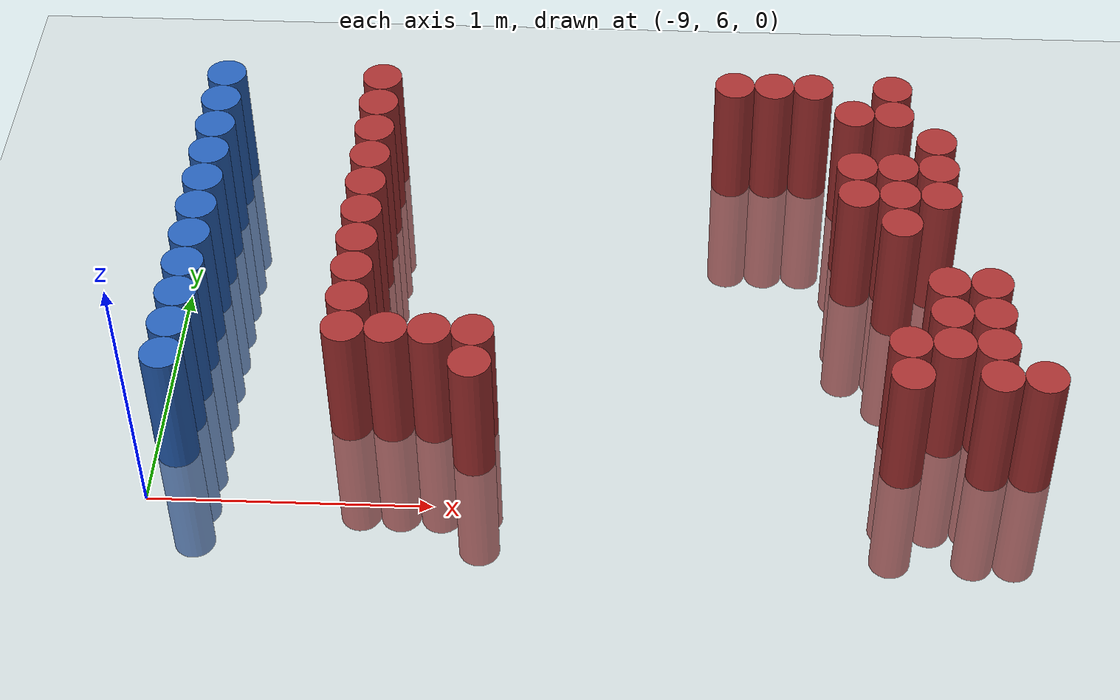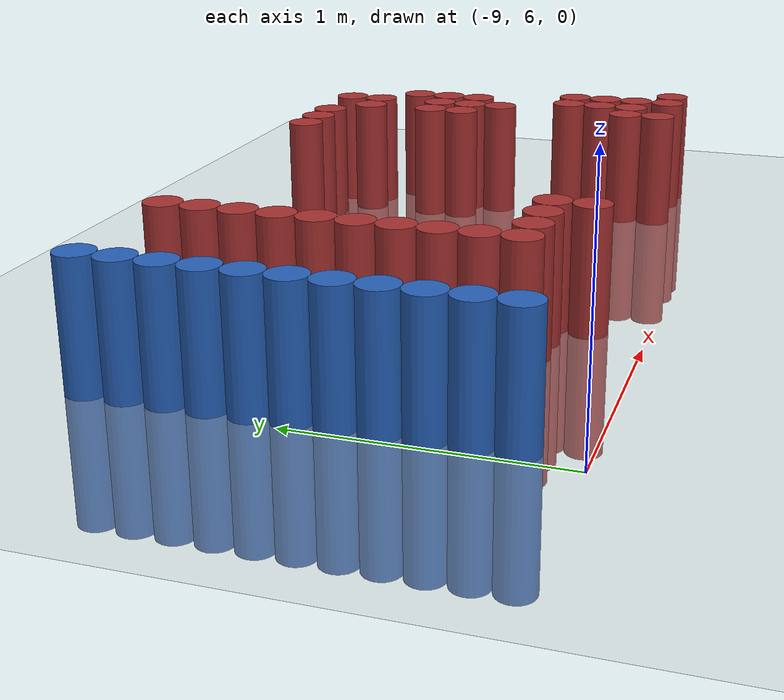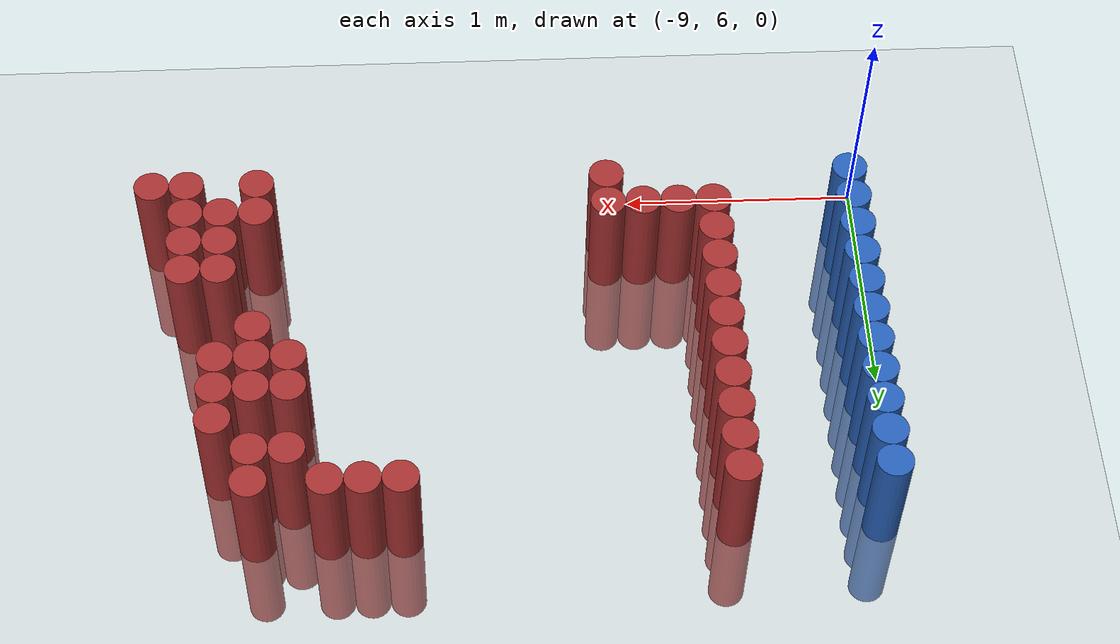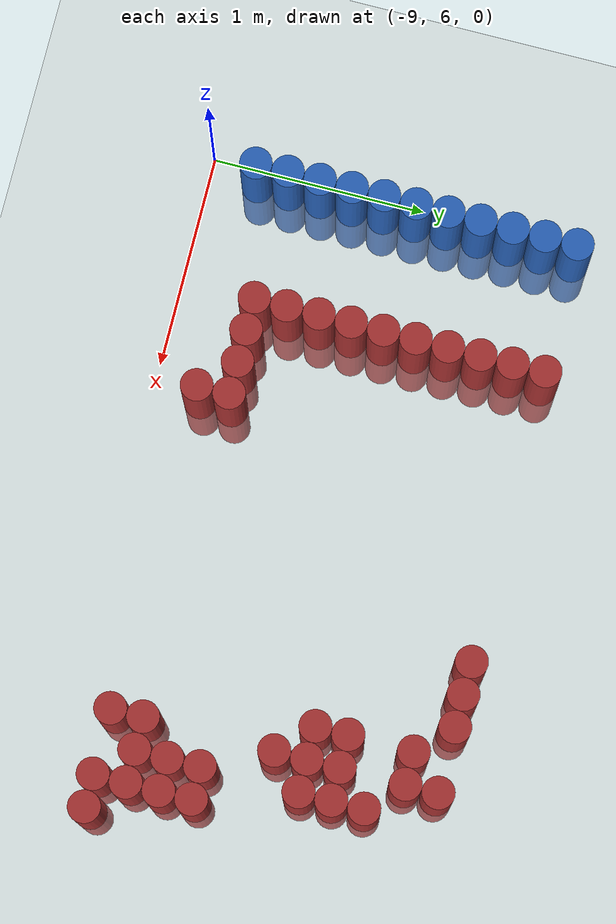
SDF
<sdf version="1.6">
 <world name="default">
  <model name="ground_plane">
   <static>1</static>
   <link name="link">
    <collision name="collision">
     <geometry><plane><normal>0 0 1</normal><size>100 100</size></plane></geometry>
     <surface><friction><ode><mu>100</mu><mu2>50</mu2></ode></friction></surface>
    </collision>
    <visual name="visual">
     <cast_shadows>0</cast_shadows>
     <geometry><plane><normal>0 0 1</normal><size>100 100</size></plane></geometry>
     <material>
      <script><uri>file://media/materials/scripts/gazebo.material</uri><name>Gazebo/Grey</name></script>
     </material>
    </visual>
   </link>
  </model>
  <model name="unit_cylinder_132">
   <static>1</static>
   <pose>-8.925000 6.225000 0.000000 0.000000 0.000000 0.000000</pose>
   <link name="link">
    <inertial>
     <mass>1</mass>
     <inertia><ixx>0.145833</ixx><ixy>0</ixy><ixz>0</ixz><iyy>0.145833</iyy><iyz>0</iyz><izz>0.125</izz></inertia>
    </inertial>
    <collision name="collision">
     <geometry><cylinder><radius>0.075000</radius><length>1</length></cylinder></geometry>
    </collision>
    <visual name="visual">
     <geometry><cylinder><radius>0.075000</radius><length>1</length></cylinder></geometry>
     <material>
      <ambient>0.152000 0.379000 0.720000 1</ambient>
      <diffuse>0.152000 0.379000 0.720000 1</diffuse>
     </material>
     <material>
      <script><name>Gazebo/Grey</name><uri>file://media/materials/scripts/gazebo.material</uri></script>
     </material>
    </visual>
   </link>
  </model>
  <model name="unit_cylinder_133">
   <static>1</static>
   <pose>-8.925000 6.375000 0.000000 0.000000 0.000000 0.000000</pose>
   <link name="link">
    <inertial>
     <mass>1</mass>
     <inertia><ixx>0.145833</ixx><ixy>0</ixy><ixz>0</ixz><iyy>0.145833</iyy><iyz>0</iyz><izz>0.125</izz></inertia>
    </inertial>
    <collision name="collision">
     <geometry><cylinder><radius>0.075000</radius><length>1</length></cylinder></geometry>
    </collision>
    <visual name="visual">
     <geometry><cylinder><radius>0.075000</radius><length>1</length></cylinder></geometry>
     <material>
      <ambient>0.152000 0.379000 0.720000 1</ambient>
      <diffuse>0.152000 0.379000 0.720000 1</diffuse>
     </material>
     <material>
      <script><name>Gazebo/Grey</name><uri>file://media/materials/scripts/gazebo.material</uri></script>
     </material>
    </visual>
   </link>
  </model>
  <model name="unit_cylinder_134">
   <static>1</static>
   <pose>-8.925000 6.525000 0.000000 0.000000 0.000000 0.000000</pose>
   <link name="link">
    <inertial>
     <mass>1</mass>
     <inertia><ixx>0.145833</ixx><ixy>0</ixy><ixz>0</ixz><iyy>0.145833</iyy><iyz>0</iyz><izz>0.125</izz></inertia>
    </inertial>
    <collision name="collision">
     <geometry><cylinder><radius>0.075000</radius><length>1</length></cylinder></geometry>
    </collision>
    <visual name="visual">
     <geometry><cylinder><radius>0.075000</radius><length>1</length></cylinder></geometry>
     <material>
      <ambient>0.152000 0.379000 0.720000 1</ambient>
      <diffuse>0.152000 0.379000 0.720000 1</diffuse>
     </material>
     <material>
      <script><name>Gazebo/Grey</name><uri>file://media/materials/scripts/gazebo.material</uri></script>
     </material>
    </visual>
   </link>
  </model>
  <model name="unit_cylinder_135">
   <static>1</static>
   <pose>-8.925000 6.675000 0.000000 0.000000 0.000000 0.000000</pose>
   <link name="link">
    <inertial>
     <mass>1</mass>
     <inertia><ixx>0.145833</ixx><ixy>0</ixy><ixz>0</ixz><iyy>0.145833</iyy><iyz>0</iyz><izz>0.125</izz></inertia>
    </inertial>
    <collision name="collision">
     <geometry><cylinder><radius>0.075000</radius><length>1</length></cylinder></geometry>
    </collision>
    <visual name="visual">
     <geometry><cylinder><radius>0.075000</radius><length>1</length></cylinder></geometry>
     <material>
      <ambient>0.152000 0.379000 0.720000 1</ambient>
      <diffuse>0.152000 0.379000 0.720000 1</diffuse>
     </material>
     <material>
      <script><name>Gazebo/Grey</name><uri>file://media/materials/scripts/gazebo.material</uri></script>
     </material>
    </visual>
   </link>
  </model>
  <model name="unit_cylinder_136">
   <static>1</static>
   <pose>-8.925000 6.825000 0.000000 0.000000 0.000000 0.000000</pose>
   <link name="link">
    <inertial>
     <mass>1</mass>
     <inertia><ixx>0.145833</ixx><ixy>0</ixy><ixz>0</ixz><iyy>0.145833</iyy><iyz>0</iyz><izz>0.125</izz></inertia>
    </inertial>
    <collision name="collision">
     <geometry><cylinder><radius>0.075000</radius><length>1</length></cylinder></geometry>
    </collision>
    <visual name="visual">
     <geometry><cylinder><radius>0.075000</radius><length>1</length></cylinder></geometry>
     <material>
      <ambient>0.152000 0.379000 0.720000 1</ambient>
      <diffuse>0.152000 0.379000 0.720000 1</diffuse>
     </material>
     <material>
      <script><name>Gazebo/Grey</name><uri>file://media/materials/scripts/gazebo.material</uri></script>
     </material>
    </visual>
   </link>
  </model>
  <model name="unit_cylinder_137">
   <static>1</static>
   <pose>-8.925000 6.975000 0.000000 0.000000 0.000000 0.000000</pose>
   <link name="link">
    <inertial>
     <mass>1</mass>
     <inertia><ixx>0.145833</ixx><ixy>0</ixy><ixz>0</ixz><iyy>0.145833</iyy><iyz>0</iyz><izz>0.125</izz></inertia>
    </inertial>
    <collision name="collision">
     <geometry><cylinder><radius>0.075000</radius><length>1</length></cylinder></geometry>
    </collision>
    <visual name="visual">
     <geometry><cylinder><radius>0.075000</radius><length>1</length></cylinder></geometry>
     <material>
      <ambient>0.152000 0.379000 0.720000 1</ambient>
      <diffuse>0.152000 0.379000 0.720000 1</diffuse>
     </material>
     <material>
      <script><name>Gazebo/Grey</name><uri>file://media/materials/scripts/gazebo.material</uri></script>
     </material>
    </visual>
   </link>
  </model>
  <model name="unit_cylinder_138">
   <static>1</static>
   <pose>-8.925000 7.125000 0.000000 0.000000 0.000000 0.000000</pose>
   <link name="link">
    <inertial>
     <mass>1</mass>
     <inertia><ixx>0.145833</ixx><ixy>0</ixy><ixz>0</ixz><iyy>0.145833</iyy><iyz>0</iyz><izz>0.125</izz></inertia>
    </inertial>
    <collision name="collision">
     <geometry><cylinder><radius>0.075000</radius><length>1</length></cylinder></geometry>
    </collision>
    <visual name="visual">
     <geometry><cylinder><radius>0.075000</radius><length>1</length></cylinder></geometry>
     <material>
      <ambient>0.152000 0.379000 0.720000 1</ambient>
      <diffuse>0.152000 0.379000 0.720000 1</diffuse>
     </material>
     <material>
      <script><name>Gazebo/Grey</name><uri>file://media/materials/scripts/gazebo.material</uri></script>
     </material>
    </visual>
   </link>
  </model>
  <model name="unit_cylinder_139">
   <static>1</static>
   <pose>-8.925000 7.275000 0.000000 0.000000 0.000000 0.000000</pose>
   <link name="link">
    <inertial>
     <mass>1</mass>
     <inertia><ixx>0.145833</ixx><ixy>0</ixy><ixz>0</ixz><iyy>0.145833</iyy><iyz>0</iyz><izz>0.125</izz></inertia>
    </inertial>
    <collision name="collision">
     <geometry><cylinder><radius>0.075000</radius><length>1</length></cylinder></geometry>
    </collision>
    <visual name="visual">
     <geometry><cylinder><radius>0.075000</radius><length>1</length></cylinder></geometry>
     <material>
      <ambient>0.152000 0.379000 0.720000 1</ambient>
      <diffuse>0.152000 0.379000 0.720000 1</diffuse>
     </material>
     <material>
      <script><name>Gazebo/Grey</name><uri>file://media/materials/scripts/gazebo.material</uri></script>
     </material>
    </visual>
   </link>
  </model>
  <model name="unit_cylinder_140">
   <static>1</static>
   <pose>-8.925000 7.425000 0.000000 0.000000 0.000000 0.000000</pose>
   <link name="link">
    <inertial>
     <mass>1</mass>
     <inertia><ixx>0.145833</ixx><ixy>0</ixy><ixz>0</ixz><iyy>0.145833</iyy><iyz>0</iyz><izz>0.125</izz></inertia>
    </inertial>
    <collision name="collision">
     <geometry><cylinder><radius>0.075000</radius><length>1</length></cylinder></geometry>
    </collision>
    <visual name="visual">
     <geometry><cylinder><radius>0.075000</radius><length>1</length></cylinder></geometry>
     <material>
      <ambient>0.152000 0.379000 0.720000 1</ambient>
      <diffuse>0.152000 0.379000 0.720000 1</diffuse>
     </material>
     <material>
      <script><name>Gazebo/Grey</name><uri>file://media/materials/scripts/gazebo.material</uri></script>
     </material>
    </visual>
   </link>
  </model>
  <model name="unit_cylinder_141">
   <static>1</static>
   <pose>-8.925000 7.575000 0.000000 0.000000 0.000000 0.000000</pose>
   <link name="link">
    <inertial>
     <mass>1</mass>
     <inertia><ixx>0.145833</ixx><ixy>0</ixy><ixz>0</ixz><iyy>0.145833</iyy><iyz>0</iyz><izz>0.125</izz></inertia>
    </inertial>
    <collision name="collision">
     <geometry><cylinder><radius>0.075000</radius><length>1</length></cylinder></geometry>
    </collision>
    <visual name="visual">
     <geometry><cylinder><radius>0.075000</radius><length>1</length></cylinder></geometry>
     <material>
      <ambient>0.152000 0.379000 0.720000 1</ambient>
      <diffuse>0.152000 0.379000 0.720000 1</diffuse>
     </material>
     <material>
      <script><name>Gazebo/Grey</name><uri>file://media/materials/scripts/gazebo.material</uri></script>
     </material>
    </visual>
   </link>
  </model>
  <model name="unit_cylinder_142">
   <static>1</static>
   <pose>-8.925000 7.725000 0.000000 0.000000 0.000000 0.000000</pose>
   <link name="link">
    <inertial>
     <mass>1</mass>
     <inertia><ixx>0.145833</ixx><ixy>0</ixy><ixz>0</ixz><iyy>0.145833</iyy><iyz>0</iyz><izz>0.125</izz></inertia>
    </inertial>
    <collision name="collision">
     <geometry><cylinder><radius>0.075000</radius><length>1</length></cylinder></geometry>
    </collision>
    <visual name="visual">
     <geometry><cylinder><radius>0.075000</radius><length>1</length></cylinder></geometry>
     <material>
      <ambient>0.152000 0.379000 0.720000 1</ambient>
      <diffuse>0.152000 0.379000 0.720000 1</diffuse>
     </material>
     <material>
      <script><name>Gazebo/Grey</name><uri>file://media/materials/scripts/gazebo.material</uri></script>
     </material>
    </visual>
   </link>
  </model>
  <model name="unit_cylinder_162">
   <static>1</static>
   <pose>-8.325000 6.375000 0.000000 0.000000 0.000000 0.000000</pose>
   <link name="link">
    <inertial>
     <mass>1</mass>
     <inertia><ixx>0.145833</ixx><ixy>0</ixy><ixz>0</ixz><iyy>0.145833</iyy><iyz>0</iyz><izz>0.125</izz></inertia>
    </inertial>
    <collision name="collision">
     <geometry><cylinder><radius>0.075000</radius><length>1</length></cylinder></geometry>
    </collision>
    <visual name="visual">
     <geometry><cylinder><radius>0.075000</radius><length>1</length></cylinder></geometry>
     <material>
      <ambient>0.648000 0.192000 0.192000 1</ambient>
      <diffuse>0.648000 0.192000 0.192000 1</diffuse>
     </material>
     <material>
      <script><name>Gazebo/Grey</name><uri>file://media/materials/scripts/gazebo.material</uri></script>
     </material>
    </visual>
   </link>
  </model>
  <model name="unit_cylinder_163">
   <static>1</static>
   <pose>-8.325000 6.525000 0.000000 0.000000 0.000000 0.000000</pose>
   <link name="link">
    <inertial>
     <mass>1</mass>
     <inertia><ixx>0.145833</ixx><ixy>0</ixy><ixz>0</ixz><iyy>0.145833</iyy><iyz>0</iyz><izz>0.125</izz></inertia>
    </inertial>
    <collision name="collision">
     <geometry><cylinder><radius>0.075000</radius><length>1</length></cylinder></geometry>
    </collision>
    <visual name="visual">
     <geometry><cylinder><radius>0.075000</radius><length>1</length></cylinder></geometry>
     <material>
      <ambient>0.648000 0.192000 0.192000 1</ambient>
      <diffuse>0.648000 0.192000 0.192000 1</diffuse>
     </material>
     <material>
      <script><name>Gazebo/Grey</name><uri>file://media/materials/scripts/gazebo.material</uri></script>
     </material>
    </visual>
   </link>
  </model>
  <model name="unit_cylinder_164">
   <static>1</static>
   <pose>-8.325000 6.675000 0.000000 0.000000 0.000000 0.000000</pose>
   <link name="link">
    <inertial>
     <mass>1</mass>
     <inertia><ixx>0.145833</ixx><ixy>0</ixy><ixz>0</ixz><iyy>0.145833</iyy><iyz>0</iyz><izz>0.125</izz></inertia>
    </inertial>
    <collision name="collision">
     <geometry><cylinder><radius>0.075000</radius><length>1</length></cylinder></geometry>
    </collision>
    <visual name="visual">
     <geometry><cylinder><radius>0.075000</radius><length>1</length></cylinder></geometry>
     <material>
      <ambient>0.648000 0.192000 0.192000 1</ambient>
      <diffuse>0.648000 0.192000 0.192000 1</diffuse>
     </material>
     <material>
      <script><name>Gazebo/Grey</name><uri>file://media/materials/scripts/gazebo.material</uri></script>
     </material>
    </visual>
   </link>
  </model>
  <model name="unit_cylinder_165">
   <static>1</static>
   <pose>-8.325000 6.825000 0.000000 0.000000 0.000000 0.000000</pose>
   <link name="link">
    <inertial>
     <mass>1</mass>
     <inertia><ixx>0.145833</ixx><ixy>0</ixy><ixz>0</ixz><iyy>0.145833</iyy><iyz>0</iyz><izz>0.125</izz></inertia>
    </inertial>
    <collision name="collision">
     <geometry><cylinder><radius>0.075000</radius><length>1</length></cylinder></geometry>
    </collision>
    <visual name="visual">
     <geometry><cylinder><radius>0.075000</radius><length>1</length></cylinder></geometry>
     <material>
      <ambient>0.648000 0.192000 0.192000 1</ambient>
      <diffuse>0.648000 0.192000 0.192000 1</diffuse>
     </material>
     <material>
      <script><name>Gazebo/Grey</name><uri>file://media/materials/scripts/gazebo.material</uri></script>
     </material>
    </visual>
   </link>
  </model>
  <model name="unit_cylinder_166">
   <static>1</static>
   <pose>-8.325000 6.975000 0.000000 0.000000 0.000000 0.000000</pose>
   <link name="link">
    <inertial>
     <mass>1</mass>
     <inertia><ixx>0.145833</ixx><ixy>0</ixy><ixz>0</ixz><iyy>0.145833</iyy><iyz>0</iyz><izz>0.125</izz></inertia>
    </inertial>
    <collision name="collision">
     <geometry><cylinder><radius>0.075000</radius><length>1</length></cylinder></geometry>
    </collision>
    <visual name="visual">
     <geometry><cylinder><radius>0.075000</radius><length>1</length></cylinder></geometry>
     <material>
      <ambient>0.648000 0.192000 0.192000 1</ambient>
      <diffuse>0.648000 0.192000 0.192000 1</diffuse>
     </material>
     <material>
      <script><name>Gazebo/Grey</name><uri>file://media/materials/scripts/gazebo.material</uri></script>
     </material>
    </visual>
   </link>
  </model>
  <model name="unit_cylinder_167">
   <static>1</static>
   <pose>-8.325000 7.125000 0.000000 0.000000 0.000000 0.000000</pose>
   <link name="link">
    <inertial>
     <mass>1</mass>
     <inertia><ixx>0.145833</ixx><ixy>0</ixy><ixz>0</ixz><iyy>0.145833</iyy><iyz>0</iyz><izz>0.125</izz></inertia>
    </inertial>
    <collision name="collision">
     <geometry><cylinder><radius>0.075000</radius><length>1</length></cylinder></geometry>
    </collision>
    <visual name="visual">
     <geometry><cylinder><radius>0.075000</radius><length>1</length></cylinder></geometry>
     <material>
      <ambient>0.648000 0.192000 0.192000 1</ambient>
      <diffuse>0.648000 0.192000 0.192000 1</diffuse>
     </material>
     <material>
      <script><name>Gazebo/Grey</name><uri>file://media/materials/scripts/gazebo.material</uri></script>
     </material>
    </visual>
   </link>
  </model>
  <model name="unit_cylinder_168">
   <static>1</static>
   <pose>-8.325000 7.275000 0.000000 0.000000 0.000000 0.000000</pose>
   <link name="link">
    <inertial>
     <mass>1</mass>
     <inertia><ixx>0.145833</ixx><ixy>0</ixy><ixz>0</ixz><iyy>0.145833</iyy><iyz>0</iyz><izz>0.125</izz></inertia>
    </inertial>
    <collision name="collision">
     <geometry><cylinder><radius>0.075000</radius><length>1</length></cylinder></geometry>
    </collision>
    <visual name="visual">
     <geometry><cylinder><radius>0.075000</radius><length>1</length></cylinder></geometry>
     <material>
      <ambient>0.648000 0.192000 0.192000 1</ambient>
      <diffuse>0.648000 0.192000 0.192000 1</diffuse>
     </material>
     <material>
      <script><name>Gazebo/Grey</name><uri>file://media/materials/scripts/gazebo.material</uri></script>
     </material>
    </visual>
   </link>
  </model>
  <model name="unit_cylinder_169">
   <static>1</static>
   <pose>-8.325000 7.425000 0.000000 0.000000 0.000000 0.000000</pose>
   <link name="link">
    <inertial>
     <mass>1</mass>
     <inertia><ixx>0.145833</ixx><ixy>0</ixy><ixz>0</ixz><iyy>0.145833</iyy><iyz>0</iyz><izz>0.125</izz></inertia>
    </inertial>
    <collision name="collision">
     <geometry><cylinder><radius>0.075000</radius><length>1</length></cylinder></geometry>
    </collision>
    <visual name="visual">
     <geometry><cylinder><radius>0.075000</radius><length>1</length></cylinder></geometry>
     <material>
      <ambient>0.648000 0.192000 0.192000 1</ambient>
      <diffuse>0.648000 0.192000 0.192000 1</diffuse>
     </material>
     <material>
      <script><name>Gazebo/Grey</name><uri>file://media/materials/scripts/gazebo.material</uri></script>
     </material>
    </visual>
   </link>
  </model>
  <model name="unit_cylinder_170">
   <static>1</static>
   <pose>-8.325000 7.575000 0.000000 0.000000 0.000000 0.000000</pose>
   <link name="link">
    <inertial>
     <mass>1</mass>
     <inertia><ixx>0.145833</ixx><ixy>0</ixy><ixz>0</ixz><iyy>0.145833</iyy><iyz>0</iyz><izz>0.125</izz></inertia>
    </inertial>
    <collision name="collision">
     <geometry><cylinder><radius>0.075000</radius><length>1</length></cylinder></geometry>
    </collision>
    <visual name="visual">
     <geometry><cylinder><radius>0.075000</radius><length>1</length></cylinder></geometry>
     <material>
      <ambient>0.648000 0.192000 0.192000 1</ambient>
      <diffuse>0.648000 0.192000 0.192000 1</diffuse>
     </material>
     <material>
      <script><name>Gazebo/Grey</name><uri>file://media/materials/scripts/gazebo.material</uri></script>
     </material>
    </visual>
   </link>
  </model>
  <model name="unit_cylinder_171">
   <static>1</static>
   <pose>-8.325000 7.725000 0.000000 0.000000 0.000000 0.000000</pose>
   <link name="link">
    <inertial>
     <mass>1</mass>
     <inertia><ixx>0.145833</ixx><ixy>0</ixy><ixz>0</ixz><iyy>0.145833</iyy><iyz>0</iyz><izz>0.125</izz></inertia>
    </inertial>
    <collision name="collision">
     <geometry><cylinder><radius>0.075000</radius><length>1</length></cylinder></geometry>
    </collision>
    <visual name="visual">
     <geometry><cylinder><radius>0.075000</radius><length>1</length></cylinder></geometry>
     <material>
      <ambient>0.648000 0.192000 0.192000 1</ambient>
      <diffuse>0.648000 0.192000 0.192000 1</diffuse>
     </material>
     <material>
      <script><name>Gazebo/Grey</name><uri>file://media/materials/scripts/gazebo.material</uri></script>
     </material>
    </visual>
   </link>
  </model>
  <model name="unit_cylinder_184">
   <static>1</static>
   <pose>-8.175000 6.375000 0.000000 0.000000 0.000000 0.000000</pose>
   <link name="link">
    <inertial>
     <mass>1</mass>
     <inertia><ixx>0.145833</ixx><ixy>0</ixy><ixz>0</ixz><iyy>0.145833</iyy><iyz>0</iyz><izz>0.125</izz></inertia>
    </inertial>
    <collision name="collision">
     <geometry><cylinder><radius>0.075000</radius><length>1</length></cylinder></geometry>
    </collision>
    <visual name="visual">
     <geometry><cylinder><radius>0.075000</radius><length>1</length></cylinder></geometry>
     <material>
      <ambient>0.648000 0.192000 0.192000 1</ambient>
      <diffuse>0.648000 0.192000 0.192000 1</diffuse>
     </material>
     <material>
      <script><name>Gazebo/Grey</name><uri>file://media/materials/scripts/gazebo.material</uri></script>
     </material>
    </visual>
   </link>
  </model>
  <model name="unit_cylinder_188">
   <static>1</static>
   <pose>-8.025000 6.375000 0.000000 0.000000 0.000000 0.000000</pose>
   <link name="link">
    <inertial>
     <mass>1</mass>
     <inertia><ixx>0.145833</ixx><ixy>0</ixy><ixz>0</ixz><iyy>0.145833</iyy><iyz>0</iyz><izz>0.125</izz></inertia>
    </inertial>
    <collision name="collision">
     <geometry><cylinder><radius>0.075000</radius><length>1</length></cylinder></geometry>
    </collision>
    <visual name="visual">
     <geometry><cylinder><radius>0.075000</radius><length>1</length></cylinder></geometry>
     <material>
      <ambient>0.648000 0.192000 0.192000 1</ambient>
      <diffuse>0.648000 0.192000 0.192000 1</diffuse>
     </material>
     <material>
      <script><name>Gazebo/Grey</name><uri>file://media/materials/scripts/gazebo.material</uri></script>
     </material>
    </visual>
   </link>
  </model>
  <model name="unit_cylinder_196">
   <static>1</static>
   <pose>-7.875000 6.225000 0.000000 0.000000 0.000000 0.000000</pose>
   <link name="link">
    <inertial>
     <mass>1</mass>
     <inertia><ixx>0.145833</ixx><ixy>0</ixy><ixz>0</ixz><iyy>0.145833</iyy><iyz>0</iyz><izz>0.125</izz></inertia>
    </inertial>
    <collision name="collision">
     <geometry><cylinder><radius>0.075000</radius><length>1</length></cylinder></geometry>
    </collision>
    <visual name="visual">
     <geometry><cylinder><radius>0.075000</radius><length>1</length></cylinder></geometry>
     <material>
      <ambient>0.648000 0.192000 0.192000 1</ambient>
      <diffuse>0.648000 0.192000 0.192000 1</diffuse>
     </material>
     <material>
      <script><name>Gazebo/Grey</name><uri>file://media/materials/scripts/gazebo.material</uri></script>
     </material>
    </visual>
   </link>
  </model>
  <model name="unit_cylinder_197">
   <static>1</static>
   <pose>-7.875000 6.375000 0.000000 0.000000 0.000000 0.000000</pose>
   <link name="link">
    <inertial>
     <mass>1</mass>
     <inertia><ixx>0.145833</ixx><ixy>0</ixy><ixz>0</ixz><iyy>0.145833</iyy><iyz>0</iyz><izz>0.125</izz></inertia>
    </inertial>
    <collision name="collision">
     <geometry><cylinder><radius>0.075000</radius><length>1</length></cylinder></geometry>
    </collision>
    <visual name="visual">
     <geometry><cylinder><radius>0.075000</radius><length>1</length></cylinder></geometry>
     <material>
      <ambient>0.648000 0.192000 0.192000 1</ambient>
      <diffuse>0.648000 0.192000 0.192000 1</diffuse>
     </material>
     <material>
      <script><name>Gazebo/Grey</name><uri>file://media/materials/scripts/gazebo.material</uri></script>
     </material>
    </visual>
   </link>
  </model>
  <model name="unit_cylinder_207">
   <static>1</static>
   <pose>-6.975000 7.725000 0.000000 0.000000 0.000000 0.000000</pose>
   <link name="link">
    <inertial>
     <mass>1</mass>
     <inertia><ixx>0.145833</ixx><ixy>0</ixy><ixz>0</ixz><iyy>0.145833</iyy><iyz>0</iyz><izz>0.125</izz></inertia>
    </inertial>
    <collision name="collision">
     <geometry><cylinder><radius>0.075000</radius><length>1</length></cylinder></geometry>
    </collision>
    <visual name="visual">
     <geometry><cylinder><radius>0.075000</radius><length>1</length></cylinder></geometry>
     <material>
      <ambient>0.648000 0.192000 0.192000 1</ambient>
      <diffuse>0.648000 0.192000 0.192000 1</diffuse>
     </material>
     <material>
      <script><name>Gazebo/Grey</name><uri>file://media/materials/scripts/gazebo.material</uri></script>
     </material>
    </visual>
   </link>
  </model>
  <model name="unit_cylinder_209">
   <static>1</static>
   <pose>-6.825000 7.725000 0.000000 0.000000 0.000000 0.000000</pose>
   <link name="link">
    <inertial>
     <mass>1</mass>
     <inertia><ixx>0.145833</ixx><ixy>0</ixy><ixz>0</ixz><iyy>0.145833</iyy><iyz>0</iyz><izz>0.125</izz></inertia>
    </inertial>
    <collision name="collision">
     <geometry><cylinder><radius>0.075000</radius><length>1</length></cylinder></geometry>
    </collision>
    <visual name="visual">
     <geometry><cylinder><radius>0.075000</radius><length>1</length></cylinder></geometry>
     <material>
      <ambient>0.648000 0.192000 0.192000 1</ambient>
      <diffuse>0.648000 0.192000 0.192000 1</diffuse>
     </material>
     <material>
      <script><name>Gazebo/Grey</name><uri>file://media/materials/scripts/gazebo.material</uri></script>
     </material>
    </visual>
   </link>
  </model>
  <model name="unit_cylinder_211">
   <static>1</static>
   <pose>-6.675000 7.725000 0.000000 0.000000 0.000000 0.000000</pose>
   <link name="link">
    <inertial>
     <mass>1</mass>
     <inertia><ixx>0.145833</ixx><ixy>0</ixy><ixz>0</ixz><iyy>0.145833</iyy><iyz>0</iyz><izz>0.125</izz></inertia>
    </inertial>
    <collision name="collision">
     <geometry><cylinder><radius>0.075000</radius><length>1</length></cylinder></geometry>
    </collision>
    <visual name="visual">
     <geometry><cylinder><radius>0.075000</radius><length>1</length></cylinder></geometry>
     <material>
      <ambient>0.648000 0.192000 0.192000 1</ambient>
      <diffuse>0.648000 0.192000 0.192000 1</diffuse>
     </material>
     <material>
      <script><name>Gazebo/Grey</name><uri>file://media/materials/scripts/gazebo.material</uri></script>
     </material>
    </visual>
   </link>
  </model>
  <model name="unit_cylinder_215">
   <static>1</static>
   <pose>-6.525000 7.125000 0.000000 0.000000 0.000000 0.000000</pose>
   <link name="link">
    <inertial>
     <mass>1</mass>
     <inertia><ixx>0.145833</ixx><ixy>0</ixy><ixz>0</ixz><iyy>0.145833</iyy><iyz>0</iyz><izz>0.125</izz></inertia>
    </inertial>
    <collision name="collision">
     <geometry><cylinder><radius>0.075000</radius><length>1</length></cylinder></geometry>
    </collision>
    <visual name="visual">
     <geometry><cylinder><radius>0.075000</radius><length>1</length></cylinder></geometry>
     <material>
      <ambient>0.648000 0.192000 0.192000 1</ambient>
      <diffuse>0.648000 0.192000 0.192000 1</diffuse>
     </material>
     <material>
      <script><name>Gazebo/Grey</name><uri>file://media/materials/scripts/gazebo.material</uri></script>
     </material>
    </visual>
   </link>
  </model>
  <model name="unit_cylinder_216">
   <static>1</static>
   <pose>-6.525000 7.275000 0.000000 0.000000 0.000000 0.000000</pose>
   <link name="link">
    <inertial>
     <mass>1</mass>
     <inertia><ixx>0.145833</ixx><ixy>0</ixy><ixz>0</ixz><iyy>0.145833</iyy><iyz>0</iyz><izz>0.125</izz></inertia>
    </inertial>
    <collision name="collision">
     <geometry><cylinder><radius>0.075000</radius><length>1</length></cylinder></geometry>
    </collision>
    <visual name="visual">
     <geometry><cylinder><radius>0.075000</radius><length>1</length></cylinder></geometry>
     <material>
      <ambient>0.648000 0.192000 0.192000 1</ambient>
      <diffuse>0.648000 0.192000 0.192000 1</diffuse>
     </material>
     <material>
      <script><name>Gazebo/Grey</name><uri>file://media/materials/scripts/gazebo.material</uri></script>
     </material>
    </visual>
   </link>
  </model>
  <model name="unit_cylinder_217">
   <static>1</static>
   <pose>-6.525000 7.575000 0.000000 0.000000 0.000000 0.000000</pose>
   <link name="link">
    <inertial>
     <mass>1</mass>
     <inertia><ixx>0.145833</ixx><ixy>0</ixy><ixz>0</ixz><iyy>0.145833</iyy><iyz>0</iyz><izz>0.125</izz></inertia>
    </inertial>
    <collision name="collision">
     <geometry><cylinder><radius>0.075000</radius><length>1</length></cylinder></geometry>
    </collision>
    <visual name="visual">
     <geometry><cylinder><radius>0.075000</radius><length>1</length></cylinder></geometry>
     <material>
      <ambient>0.648000 0.192000 0.192000 1</ambient>
      <diffuse>0.648000 0.192000 0.192000 1</diffuse>
     </material>
     <material>
      <script><name>Gazebo/Grey</name><uri>file://media/materials/scripts/gazebo.material</uri></script>
     </material>
    </visual>
   </link>
  </model>
  <model name="unit_cylinder_222">
   <static>1</static>
   <pose>-6.375000 6.225000 0.000000 0.000000 0.000000 0.000000</pose>
   <link name="link">
    <inertial>
     <mass>1</mass>
     <inertia><ixx>0.145833</ixx><ixy>0</ixy><ixz>0</ixz><iyy>0.145833</iyy><iyz>0</iyz><izz>0.125</izz></inertia>
    </inertial>
    <collision name="collision">
     <geometry><cylinder><radius>0.075000</radius><length>1</length></cylinder></geometry>
    </collision>
    <visual name="visual">
     <geometry><cylinder><radius>0.075000</radius><length>1</length></cylinder></geometry>
     <material>
      <ambient>0.648000 0.192000 0.192000 1</ambient>
      <diffuse>0.648000 0.192000 0.192000 1</diffuse>
     </material>
     <material>
      <script><name>Gazebo/Grey</name><uri>file://media/materials/scripts/gazebo.material</uri></script>
     </material>
    </visual>
   </link>
  </model>
  <model name="unit_cylinder_223">
   <static>1</static>
   <pose>-6.375000 6.375000 0.000000 0.000000 0.000000 0.000000</pose>
   <link name="link">
    <inertial>
     <mass>1</mass>
     <inertia><ixx>0.145833</ixx><ixy>0</ixy><ixz>0</ixz><iyy>0.145833</iyy><iyz>0</iyz><izz>0.125</izz></inertia>
    </inertial>
    <collision name="collision">
     <geometry><cylinder><radius>0.075000</radius><length>1</length></cylinder></geometry>
    </collision>
    <visual name="visual">
     <geometry><cylinder><radius>0.075000</radius><length>1</length></cylinder></geometry>
     <material>
      <ambient>0.648000 0.192000 0.192000 1</ambient>
      <diffuse>0.648000 0.192000 0.192000 1</diffuse>
     </material>
     <material>
      <script><name>Gazebo/Grey</name><uri>file://media/materials/scripts/gazebo.material</uri></script>
     </material>
    </visual>
   </link>
  </model>
  <model name="unit_cylinder_224">
   <static>1</static>
   <pose>-6.375000 6.975000 0.000000 0.000000 0.000000 0.000000</pose>
   <link name="link">
    <inertial>
     <mass>1</mass>
     <inertia><ixx>0.145833</ixx><ixy>0</ixy><ixz>0</ixz><iyy>0.145833</iyy><iyz>0</iyz><izz>0.125</izz></inertia>
    </inertial>
    <collision name="collision">
     <geometry><cylinder><radius>0.075000</radius><length>1</length></cylinder></geometry>
    </collision>
    <visual name="visual">
     <geometry><cylinder><radius>0.075000</radius><length>1</length></cylinder></geometry>
     <material>
      <ambient>0.648000 0.192000 0.192000 1</ambient>
      <diffuse>0.648000 0.192000 0.192000 1</diffuse>
     </material>
     <material>
      <script><name>Gazebo/Grey</name><uri>file://media/materials/scripts/gazebo.material</uri></script>
     </material>
    </visual>
   </link>
  </model>
  <model name="unit_cylinder_225">
   <static>1</static>
   <pose>-6.375000 7.125000 0.000000 0.000000 0.000000 0.000000</pose>
   <link name="link">
    <inertial>
     <mass>1</mass>
     <inertia><ixx>0.145833</ixx><ixy>0</ixy><ixz>0</ixz><iyy>0.145833</iyy><iyz>0</iyz><izz>0.125</izz></inertia>
    </inertial>
    <collision name="collision">
     <geometry><cylinder><radius>0.075000</radius><length>1</length></cylinder></geometry>
    </collision>
    <visual name="visual">
     <geometry><cylinder><radius>0.075000</radius><length>1</length></cylinder></geometry>
     <material>
      <ambient>0.648000 0.192000 0.192000 1</ambient>
      <diffuse>0.648000 0.192000 0.192000 1</diffuse>
     </material>
     <material>
      <script><name>Gazebo/Grey</name><uri>file://media/materials/scripts/gazebo.material</uri></script>
     </material>
    </visual>
   </link>
  </model>
  <model name="unit_cylinder_226">
   <static>1</static>
   <pose>-6.375000 7.275000 0.000000 0.000000 0.000000 0.000000</pose>
   <link name="link">
    <inertial>
     <mass>1</mass>
     <inertia><ixx>0.145833</ixx><ixy>0</ixy><ixz>0</ixz><iyy>0.145833</iyy><iyz>0</iyz><izz>0.125</izz></inertia>
    </inertial>
    <collision name="collision">
     <geometry><cylinder><radius>0.075000</radius><length>1</length></cylinder></geometry>
    </collision>
    <visual name="visual">
     <geometry><cylinder><radius>0.075000</radius><length>1</length></cylinder></geometry>
     <material>
      <ambient>0.648000 0.192000 0.192000 1</ambient>
      <diffuse>0.648000 0.192000 0.192000 1</diffuse>
     </material>
     <material>
      <script><name>Gazebo/Grey</name><uri>file://media/materials/scripts/gazebo.material</uri></script>
     </material>
    </visual>
   </link>
  </model>
  <model name="unit_cylinder_227">
   <static>1</static>
   <pose>-6.375000 7.575000 0.000000 0.000000 0.000000 0.000000</pose>
   <link name="link">
    <inertial>
     <mass>1</mass>
     <inertia><ixx>0.145833</ixx><ixy>0</ixy><ixz>0</ixz><iyy>0.145833</iyy><iyz>0</iyz><izz>0.125</izz></inertia>
    </inertial>
    <collision name="collision">
     <geometry><cylinder><radius>0.075000</radius><length>1</length></cylinder></geometry>
    </collision>
    <visual name="visual">
     <geometry><cylinder><radius>0.075000</radius><length>1</length></cylinder></geometry>
     <material>
      <ambient>0.648000 0.192000 0.192000 1</ambient>
      <diffuse>0.648000 0.192000 0.192000 1</diffuse>
     </material>
     <material>
      <script><name>Gazebo/Grey</name><uri>file://media/materials/scripts/gazebo.material</uri></script>
     </material>
    </visual>
   </link>
  </model>
  <model name="unit_cylinder_228">
   <static>1</static>
   <pose>-6.375000 7.725000 0.000000 0.000000 0.000000 0.000000</pose>
   <link name="link">
    <inertial>
     <mass>1</mass>
     <inertia><ixx>0.145833</ixx><ixy>0</ixy><ixz>0</ixz><iyy>0.145833</iyy><iyz>0</iyz><izz>0.125</izz></inertia>
    </inertial>
    <collision name="collision">
     <geometry><cylinder><radius>0.075000</radius><length>1</length></cylinder></geometry>
    </collision>
    <visual name="visual">
     <geometry><cylinder><radius>0.075000</radius><length>1</length></cylinder></geometry>
     <material>
      <ambient>0.648000 0.192000 0.192000 1</ambient>
      <diffuse>0.648000 0.192000 0.192000 1</diffuse>
     </material>
     <material>
      <script><name>Gazebo/Grey</name><uri>file://media/materials/scripts/gazebo.material</uri></script>
     </material>
    </visual>
   </link>
  </model>
  <model name="unit_cylinder_231">
   <static>1</static>
   <pose>-6.225000 6.375000 0.000000 0.000000 0.000000 0.000000</pose>
   <link name="link">
    <inertial>
     <mass>1</mass>
     <inertia><ixx>0.145833</ixx><ixy>0</ixy><ixz>0</ixz><iyy>0.145833</iyy><iyz>0</iyz><izz>0.125</izz></inertia>
    </inertial>
    <collision name="collision">
     <geometry><cylinder><radius>0.075000</radius><length>1</length></cylinder></geometry>
    </collision>
    <visual name="visual">
     <geometry><cylinder><radius>0.075000</radius><length>1</length></cylinder></geometry>
     <material>
      <ambient>0.648000 0.192000 0.192000 1</ambient>
      <diffuse>0.648000 0.192000 0.192000 1</diffuse>
     </material>
     <material>
      <script><name>Gazebo/Grey</name><uri>file://media/materials/scripts/gazebo.material</uri></script>
     </material>
    </visual>
   </link>
  </model>
  <model name="unit_cylinder_232">
   <static>1</static>
   <pose>-6.225000 6.525000 0.000000 0.000000 0.000000 0.000000</pose>
   <link name="link">
    <inertial>
     <mass>1</mass>
     <inertia><ixx>0.145833</ixx><ixy>0</ixy><ixz>0</ixz><iyy>0.145833</iyy><iyz>0</iyz><izz>0.125</izz></inertia>
    </inertial>
    <collision name="collision">
     <geometry><cylinder><radius>0.075000</radius><length>1</length></cylinder></geometry>
    </collision>
    <visual name="visual">
     <geometry><cylinder><radius>0.075000</radius><length>1</length></cylinder></geometry>
     <material>
      <ambient>0.648000 0.192000 0.192000 1</ambient>
      <diffuse>0.648000 0.192000 0.192000 1</diffuse>
     </material>
     <material>
      <script><name>Gazebo/Grey</name><uri>file://media/materials/scripts/gazebo.material</uri></script>
     </material>
    </visual>
   </link>
  </model>
  <model name="unit_cylinder_233">
   <static>1</static>
   <pose>-6.225000 6.675000 0.000000 0.000000 0.000000 0.000000</pose>
   <link name="link">
    <inertial>
     <mass>1</mass>
     <inertia><ixx>0.145833</ixx><ixy>0</ixy><ixz>0</ixz><iyy>0.145833</iyy><iyz>0</iyz><izz>0.125</izz></inertia>
    </inertial>
    <collision name="collision">
     <geometry><cylinder><radius>0.075000</radius><length>1</length></cylinder></geometry>
    </collision>
    <visual name="visual">
     <geometry><cylinder><radius>0.075000</radius><length>1</length></cylinder></geometry>
     <material>
      <ambient>0.648000 0.192000 0.192000 1</ambient>
      <diffuse>0.648000 0.192000 0.192000 1</diffuse>
     </material>
     <material>
      <script><name>Gazebo/Grey</name><uri>file://media/materials/scripts/gazebo.material</uri></script>
     </material>
    </visual>
   </link>
  </model>
  <model name="unit_cylinder_234">
   <static>1</static>
   <pose>-6.225000 7.125000 0.000000 0.000000 0.000000 0.000000</pose>
   <link name="link">
    <inertial>
     <mass>1</mass>
     <inertia><ixx>0.145833</ixx><ixy>0</ixy><ixz>0</ixz><iyy>0.145833</iyy><iyz>0</iyz><izz>0.125</izz></inertia>
    </inertial>
    <collision name="collision">
     <geometry><cylinder><radius>0.075000</radius><length>1</length></cylinder></geometry>
    </collision>
    <visual name="visual">
     <geometry><cylinder><radius>0.075000</radius><length>1</length></cylinder></geometry>
     <material>
      <ambient>0.648000 0.192000 0.192000 1</ambient>
      <diffuse>0.648000 0.192000 0.192000 1</diffuse>
     </material>
     <material>
      <script><name>Gazebo/Grey</name><uri>file://media/materials/scripts/gazebo.material</uri></script>
     </material>
    </visual>
   </link>
  </model>
  <model name="unit_cylinder_235">
   <static>1</static>
   <pose>-6.225000 7.275000 0.000000 0.000000 0.000000 0.000000</pose>
   <link name="link">
    <inertial>
     <mass>1</mass>
     <inertia><ixx>0.145833</ixx><ixy>0</ixy><ixz>0</ixz><iyy>0.145833</iyy><iyz>0</iyz><izz>0.125</izz></inertia>
    </inertial>
    <collision name="collision">
     <geometry><cylinder><radius>0.075000</radius><length>1</length></cylinder></geometry>
    </collision>
    <visual name="visual">
     <geometry><cylinder><radius>0.075000</radius><length>1</length></cylinder></geometry>
     <material>
      <ambient>0.648000 0.192000 0.192000 1</ambient>
      <diffuse>0.648000 0.192000 0.192000 1</diffuse>
     </material>
     <material>
      <script><name>Gazebo/Grey</name><uri>file://media/materials/scripts/gazebo.material</uri></script>
     </material>
    </visual>
   </link>
  </model>
  <model name="unit_cylinder_236">
   <static>1</static>
   <pose>-6.225000 7.425000 0.000000 0.000000 0.000000 0.000000</pose>
   <link name="link">
    <inertial>
     <mass>1</mass>
     <inertia><ixx>0.145833</ixx><ixy>0</ixy><ixz>0</ixz><iyy>0.145833</iyy><iyz>0</iyz><izz>0.125</izz></inertia>
    </inertial>
    <collision name="collision">
     <geometry><cylinder><radius>0.075000</radius><length>1</length></cylinder></geometry>
    </collision>
    <visual name="visual">
     <geometry><cylinder><radius>0.075000</radius><length>1</length></cylinder></geometry>
     <material>
      <ambient>0.648000 0.192000 0.192000 1</ambient>
      <diffuse>0.648000 0.192000 0.192000 1</diffuse>
     </material>
     <material>
      <script><name>Gazebo/Grey</name><uri>file://media/materials/scripts/gazebo.material</uri></script>
     </material>
    </visual>
   </link>
  </model>
  <model name="unit_cylinder_238">
   <static>1</static>
   <pose>-6.075000 6.225000 0.000000 0.000000 0.000000 0.000000</pose>
   <link name="link">
    <inertial>
     <mass>1</mass>
     <inertia><ixx>0.145833</ixx><ixy>0</ixy><ixz>0</ixz><iyy>0.145833</iyy><iyz>0</iyz><izz>0.125</izz></inertia>
    </inertial>
    <collision name="collision">
     <geometry><cylinder><radius>0.075000</radius><length>1</length></cylinder></geometry>
    </collision>
    <visual name="visual">
     <geometry><cylinder><radius>0.075000</radius><length>1</length></cylinder></geometry>
     <material>
      <ambient>0.648000 0.192000 0.192000 1</ambient>
      <diffuse>0.648000 0.192000 0.192000 1</diffuse>
     </material>
     <material>
      <script><name>Gazebo/Grey</name><uri>file://media/materials/scripts/gazebo.material</uri></script>
     </material>
    </visual>
   </link>
  </model>
  <model name="unit_cylinder_239">
   <static>1</static>
   <pose>-6.075000 6.375000 0.000000 0.000000 0.000000 0.000000</pose>
   <link name="link">
    <inertial>
     <mass>1</mass>
     <inertia><ixx>0.145833</ixx><ixy>0</ixy><ixz>0</ixz><iyy>0.145833</iyy><iyz>0</iyz><izz>0.125</izz></inertia>
    </inertial>
    <collision name="collision">
     <geometry><cylinder><radius>0.075000</radius><length>1</length></cylinder></geometry>
    </collision>
    <visual name="visual">
     <geometry><cylinder><radius>0.075000</radius><length>1</length></cylinder></geometry>
     <material>
      <ambient>0.648000 0.192000 0.192000 1</ambient>
      <diffuse>0.648000 0.192000 0.192000 1</diffuse>
     </material>
     <material>
      <script><name>Gazebo/Grey</name><uri>file://media/materials/scripts/gazebo.material</uri></script>
     </material>
    </visual>
   </link>
  </model>
  <model name="unit_cylinder_240">
   <static>1</static>
   <pose>-6.075000 6.525000 0.000000 0.000000 0.000000 0.000000</pose>
   <link name="link">
    <inertial>
     <mass>1</mass>
     <inertia><ixx>0.145833</ixx><ixy>0</ixy><ixz>0</ixz><iyy>0.145833</iyy><iyz>0</iyz><izz>0.125</izz></inertia>
    </inertial>
    <collision name="collision">
     <geometry><cylinder><radius>0.075000</radius><length>1</length></cylinder></geometry>
    </collision>
    <visual name="visual">
     <geometry><cylinder><radius>0.075000</radius><length>1</length></cylinder></geometry>
     <material>
      <ambient>0.648000 0.192000 0.192000 1</ambient>
      <diffuse>0.648000 0.192000 0.192000 1</diffuse>
     </material>
     <material>
      <script><name>Gazebo/Grey</name><uri>file://media/materials/scripts/gazebo.material</uri></script>
     </material>
    </visual>
   </link>
  </model>
  <model name="unit_cylinder_241">
   <static>1</static>
   <pose>-6.075000 6.675000 0.000000 0.000000 0.000000 0.000000</pose>
   <link name="link">
    <inertial>
     <mass>1</mass>
     <inertia><ixx>0.145833</ixx><ixy>0</ixy><ixz>0</ixz><iyy>0.145833</iyy><iyz>0</iyz><izz>0.125</izz></inertia>
    </inertial>
    <collision name="collision">
     <geometry><cylinder><radius>0.075000</radius><length>1</length></cylinder></geometry>
    </collision>
    <visual name="visual">
     <geometry><cylinder><radius>0.075000</radius><length>1</length></cylinder></geometry>
     <material>
      <ambient>0.648000 0.192000 0.192000 1</ambient>
      <diffuse>0.648000 0.192000 0.192000 1</diffuse>
     </material>
     <material>
      <script><name>Gazebo/Grey</name><uri>file://media/materials/scripts/gazebo.material</uri></script>
     </material>
    </visual>
   </link>
  </model>
  <model name="unit_cylinder_246">
   <static>1</static>
   <pose>-5.925000 6.225000 0.000000 0.000000 0.000000 0.000000</pose>
   <link name="link">
    <inertial>
     <mass>1</mass>
     <inertia><ixx>0.145833</ixx><ixy>0</ixy><ixz>0</ixz><iyy>0.145833</iyy><iyz>0</iyz><izz>0.125</izz></inertia>
    </inertial>
    <collision name="collision">
     <geometry><cylinder><radius>0.075000</radius><length>1</length></cylinder></geometry>
    </collision>
    <visual name="visual">
     <geometry><cylinder><radius>0.075000</radius><length>1</length></cylinder></geometry>
     <material>
      <ambient>0.648000 0.192000 0.192000 1</ambient>
      <diffuse>0.648000 0.192000 0.192000 1</diffuse>
     </material>
     <material>
      <script><name>Gazebo/Grey</name><uri>file://media/materials/scripts/gazebo.material</uri></script>
     </material>
    </visual>
   </link>
  </model>
 </world>
</sdf>
